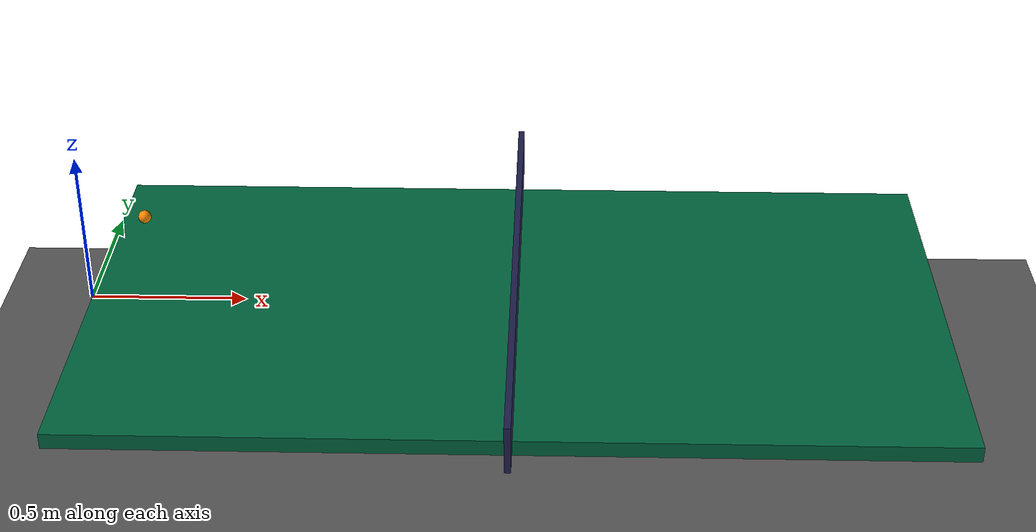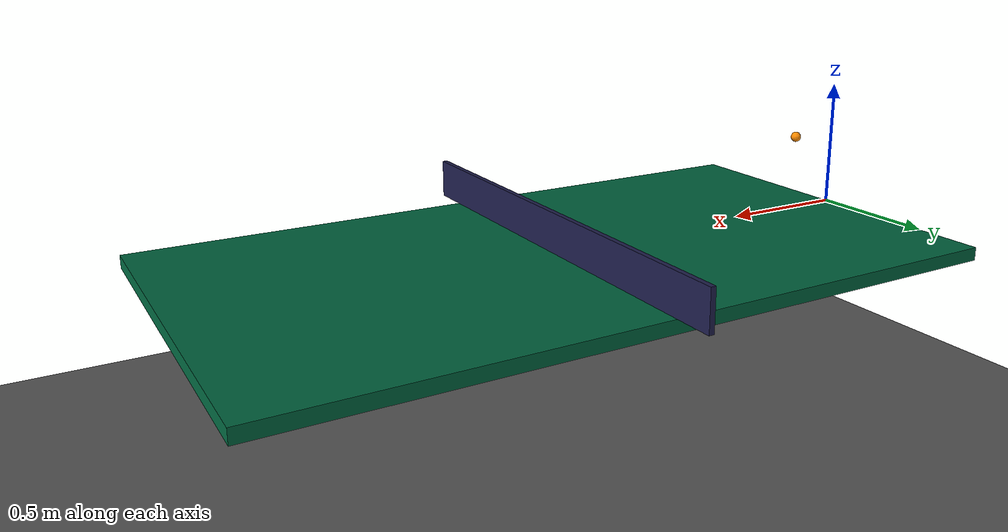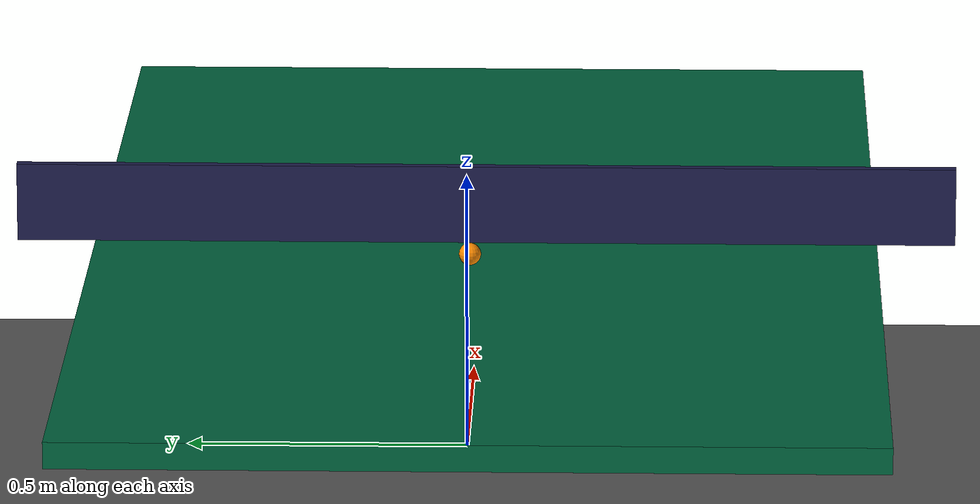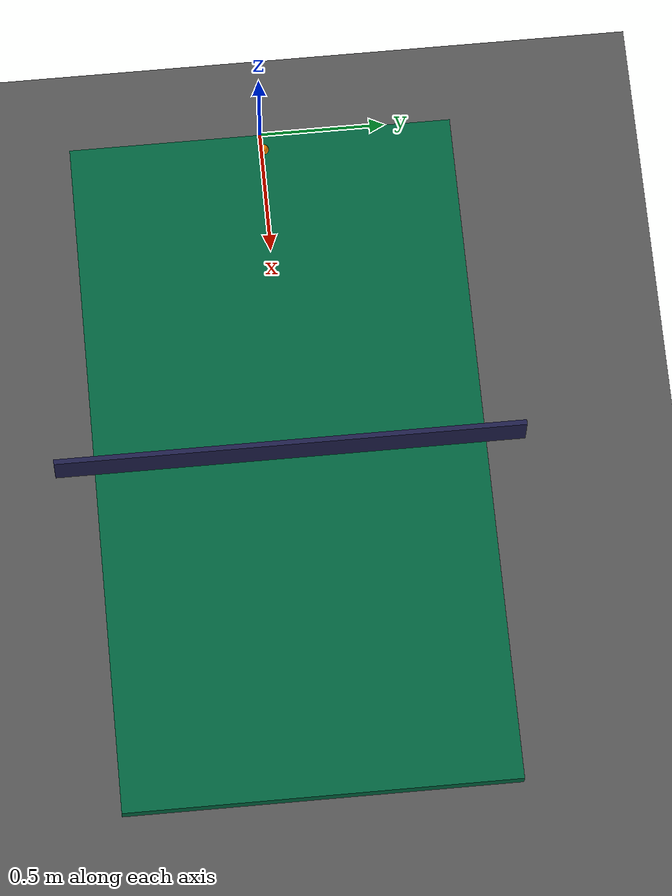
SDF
<?xml version="1.0"?>
<sdf version="1.9">
  <world name="table_tennis">
    <physics name="1ms" type="dart">
      <max_step_size>0.001</max_step_size>
      <real_time_factor>1.0</real_time_factor>
    </physics>

    <plugin filename="gz-sim-physics-system" name="gz::sim::systems::Physics"/>
    <plugin filename="gz-sim-scene-broadcaster-system" name="gz::sim::systems::SceneBroadcaster"/>
    <plugin filename="gz-sim-user-commands-system" name="gz::sim::systems::UserCommands"/>
    <plugin filename="gz-sim-sensors-system" name="gz::sim::systems::Sensors">
      <render_engine>ogre2</render_engine>
    </plugin>

    <gravity>0 0 -9.81</gravity>

    <scene>
      <ambient>0.6 0.6 0.6 1</ambient>
      <background>0.70 0.85 1.0 1</background>
    </scene>
    <light type="directional" name="sun">
      <cast_shadows>false</cast_shadows>
      <pose>0 0 10 0 0 0</pose>
      <diffuse>0.9 0.9 0.9 1</diffuse>
      <specular>0.1 0.1 0.1 1</specular>
      <direction>-0.3 0.2 -0.9</direction>
    </light>

    <model name="ground"><static>true</static>
      <pose>0 0 -0.76 0 0 0</pose>
      <link name="l"><collision name="c"><geometry><plane><normal>0 0 1</normal>
        <size>20 20</size></plane></geometry></collision>
        <visual name="v"><geometry><box><size>20 20 0.01</size></box></geometry>
        <material><ambient>0.3 0.3 0.3 1</ambient><diffuse>0.35 0.35 0.35 1</diffuse></material></visual>
      </link>
    </model>

    <model name="table"><static>true</static>
      <pose>1.37 0 -0.025 0 0 0</pose>
      <link name="top">
        <collision name="c"><geometry><box><size>2.74 1.525 0.05</size></box></geometry>
          <surface><bounce><restitution_coefficient>0.9</restitution_coefficient><threshold>0</threshold></bounce>
          <friction><ode><mu>0.25</mu><mu2>0.25</mu2></ode></friction></surface>
        </collision>
        <visual name="v"><geometry><box><size>2.74 1.525 0.05</size></box></geometry>
          <material><ambient>0.0 0.35 0.2 1</ambient><diffuse>0.0 0.4 0.25 1</diffuse></material></visual>
      </link>
    </model>

    <model name="net"><static>true</static>
      <pose>1.37 0 0.07625 0 0 0</pose>
      <link name="l">
        <collision name="c"><geometry><box><size>0.02 1.83 0.1525</size></box></geometry></collision>
        <visual name="v"><geometry><box><size>0.02 1.83 0.1525</size></box></geometry>
          <material><ambient>0.10 0.10 0.25 1</ambient><diffuse>0.12 0.12 0.30 1</diffuse></material></visual>
      </link>
    </model>

    <!-- side camera: on the -y side looking +y across the table -->
    <model name="cam_side"><static>true</static>
      <pose>1.37 -2.5 0.6 0 0 1.5707963268</pose>
      <link name="link">
        <sensor name="cam" type="camera">
          <topic>/camera/side</topic>
          <update_rate>500</update_rate>
          <always_on>1</always_on>
          <camera>
            <horizontal_fov>1.2</horizontal_fov>
            <image><width>640</width><height>480</height></image>
            <clip><near>0.05</near><far>30</far></clip>
            <noise><type>gaussian</type><mean>0</mean><stddev>0.007</stddev></noise>
          </camera>
        </sensor>
      </link>
    </model>

    <!-- back camera: behind the serve looking +x down the table -->
    <model name="cam_back"><static>true</static>
      <pose>-2.0 0 0.8 0 0 0</pose>
      <link name="link">
        <sensor name="cam" type="camera">
          <topic>/camera/back</topic>
          <update_rate>500</update_rate>
          <always_on>1</always_on>
          <camera>
            <horizontal_fov>1.2</horizontal_fov>
            <image><width>640</width><height>480</height></image>
            <clip><near>0.05</near><far>30</far></clip>
            <noise><type>gaussian</type><mean>0</mean><stddev>0.007</stddev></noise>
          </camera>
        </sensor>
      </link>
    </model>

    <include><uri>model://pingpong_ball</uri></include>
  </world>
</sdf>

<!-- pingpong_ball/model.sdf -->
<sdf version="1.9">
  <model name="pingpong_ball">
    <!-- start 0.2 m in, centered, 0.30 m above the table top (z=0) -->
    <pose>0.2 0 0.3 0 0 0</pose>
    <link name="ball_link">
      <inertial>
        <mass>0.0027</mass>
        <inertia>
          <ixx>4.32e-7</ixx><iyy>4.32e-7</iyy><izz>4.32e-7</izz>
          <ixy>0</ixy><ixz>0</ixz><iyz>0</iyz>
        </inertia>
      </inertial>
      <collision name="col">
        <geometry><sphere><radius>0.02</radius></sphere></geometry>
        <surface>
          <bounce><restitution_coefficient>0.9</restitution_coefficient><threshold>0</threshold></bounce>
          <friction><ode><mu>0.25</mu><mu2>0.25</mu2></ode></friction>
        </surface>
      </collision>
      <visual name="vis">
        <geometry><sphere><radius>0.02</radius></sphere></geometry>
        <material><ambient>1 0.5 0 1</ambient><diffuse>1 0.55 0 1</diffuse></material>
      </visual>
    </link>

    <plugin filename="gz-sim-pose-publisher-system" name="gz::sim::systems::PosePublisher">
      <publish_model_pose>true</publish_model_pose>
      <publish_link_pose>false</publish_link_pose>
      <use_pose_vector_msg>true</use_pose_vector_msg>
      <update_frequency>1000</update_frequency>
    </plugin>

    <!-- aero + launch; edit init_linear / init_angular per working condition.
         topspin = +y; constants match ttsim/physics.py -->
    <plugin filename="AeroLaunch" name="ttsim::AeroLaunch">
      <link_name>ball_link</link_name>
      <mass>0.0027</mass>
      <drag_coeff>0.1117</drag_coeff>
      <magnus_coeff>0.0016</magnus_coeff>
      <init_linear>6 0 0.9</init_linear>
      <init_angular>0 400 0</init_angular>
    </plugin>
  </model>
</sdf>
